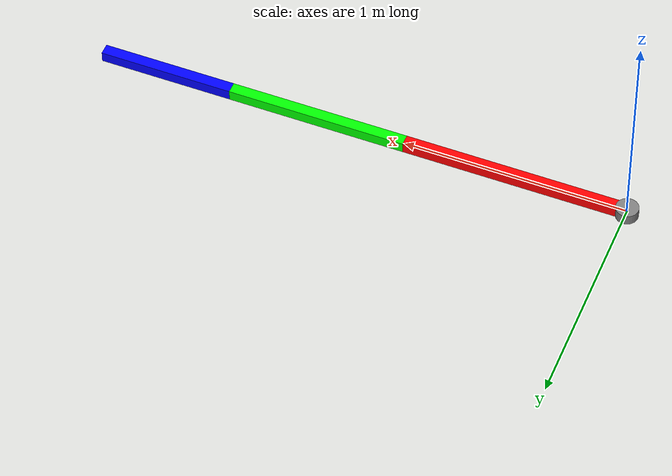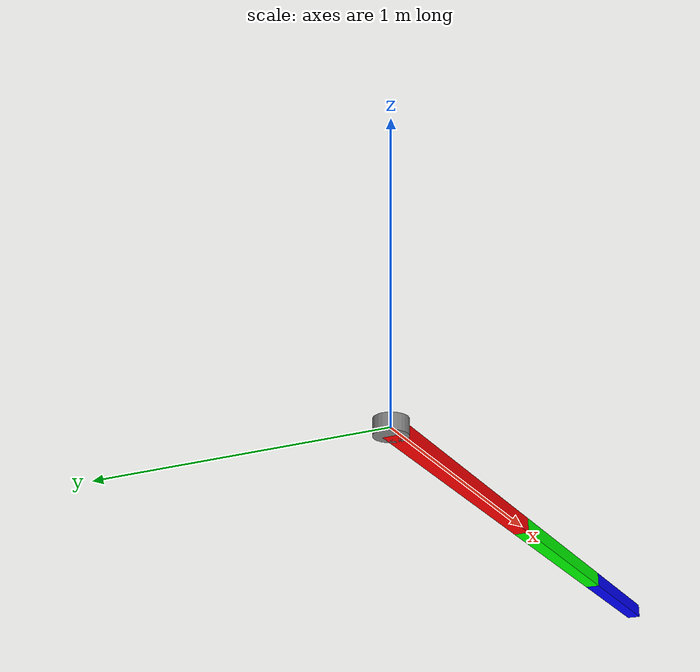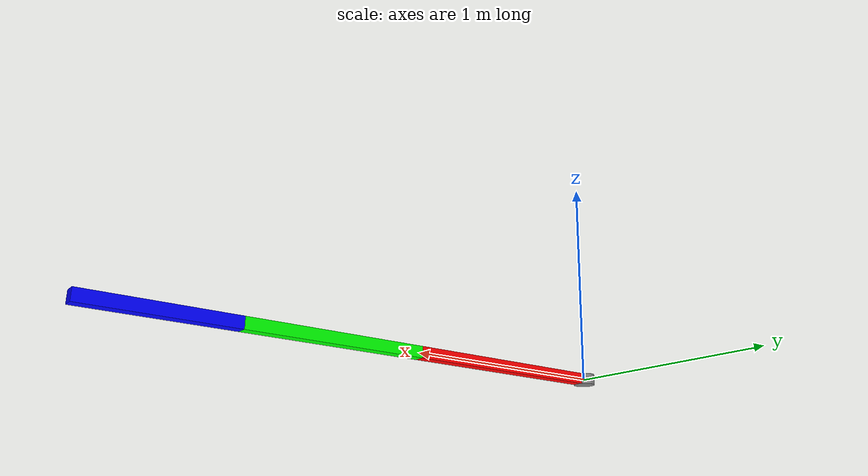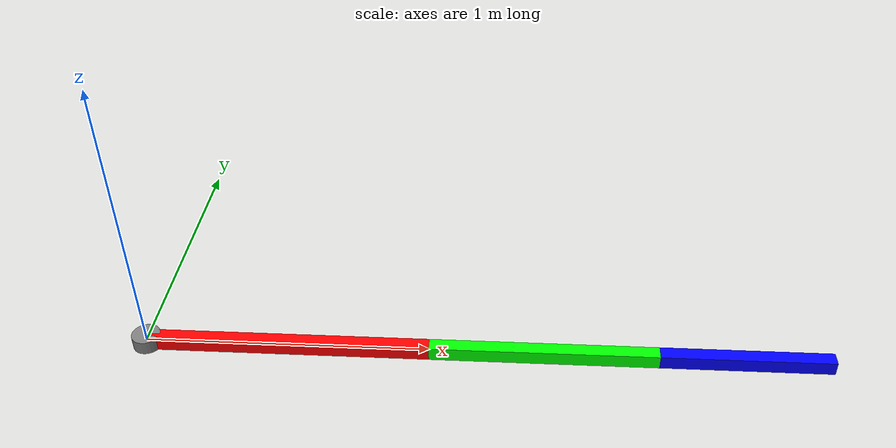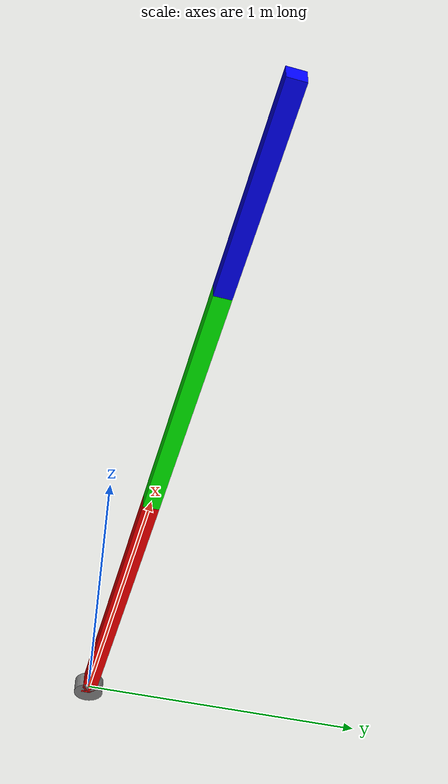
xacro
<?xml version="1.0"?>
<robot xmlns:xacro="http://ros.org/wiki/xacro" name="planar_3r">
  <!-- Convert args to properties for internal use -->
  <xacro:arg name="a1" default="1.0"/>
  <xacro:arg name="a2" default="0.8"/>
  <xacro:arg name="a3" default="0.6"/>
  <xacro:arg name="width" default="0.05"/>

  <!-- Base link -->
  <link name="base_link">
    <visual>
      <geometry>
        <cylinder length="$(arg width)" radius="$(arg width)"/>
      </geometry>
      <origin xyz="0 0 0"/>
      <material name="grey">
        <color rgba="0.5 0.5 0.5 1.0"/>
      </material>
    </visual>
  </link>

  <!-- Link 1 -->
  <link name="link1">
    <visual>
      <geometry>
        <box size="$(arg a1) $(arg width) $(arg width)"/>
      </geometry>
      <origin xyz="${$(arg a1) * 0.5} 0 0"/>
      <material name="red">
        <color rgba="1 0 0 1"/>
      </material>
    </visual>
  </link>

  <joint name="joint1" type="revolute">
    <parent link="base_link"/>
    <child link="link1"/>
    <origin xyz="0 0 0" rpy="0 0 0"/>
    <axis xyz="0 0 1"/>
    <limit lower="${-pi}" upper="${pi}" effort="1.0" velocity="1.0"/>
  </joint>

  <!-- Link 2 -->
  <link name="link2">
    <visual>
      <geometry>
        <box size="$(arg a2) $(arg width) $(arg width)"/>
      </geometry>
      <origin xyz="${$(arg a2) * 0.5} 0 0"/>
      <material name="green">
        <color rgba="0 1 0 1"/>
      </material>
    </visual>
  </link>

  <joint name="joint2" type="revolute">
    <parent link="link1"/>
    <child link="link2"/>
    <origin xyz="$(arg a1) 0 0" rpy="0 0 0"/>
    <axis xyz="0 0 1"/>
    <limit lower="${-pi}" upper="${pi}" effort="1.0" velocity="1.0"/>
  </joint>

  <!-- Link 3 -->
  <link name="link3">
    <visual>
      <geometry>
        <box size="$(arg a3) $(arg width) $(arg width)"/>
      </geometry>
      <origin xyz="${$(arg a3) * 0.5} 0 0"/>
      <material name="blue">
        <color rgba="0 0 1 1"/>
      </material>
    </visual>
  </link>

  <joint name="joint3" type="revolute">
    <parent link="link2"/>
    <child link="link3"/>
    <origin xyz="$(arg a2) 0 0" rpy="0 0 0"/>
    <axis xyz="0 0 1"/>
    <limit lower="${-pi}" upper="${pi}" effort="1.0" velocity="1.0"/>
  </joint>

  <!-- Flange -->
  <link name="flange"/>

  <joint name="flange_joint" type="fixed">
    <parent link="link3"/>
    <child link="flange"/>
    <origin xyz="$(arg a3) 0 0" rpy="0 0 0 "/>
  </joint>
</robot>
